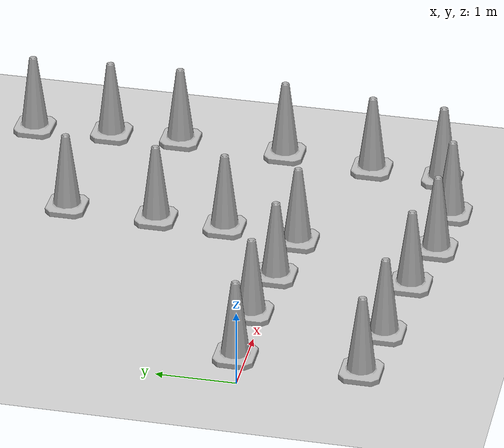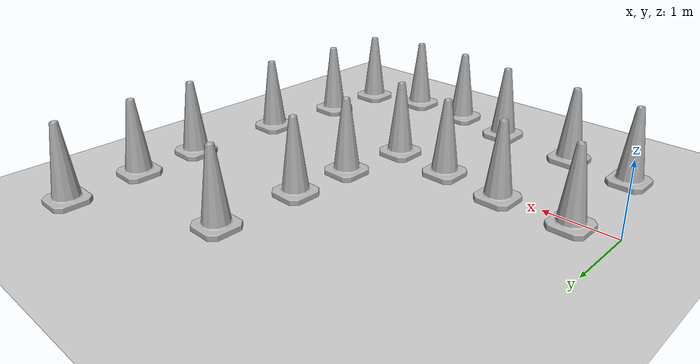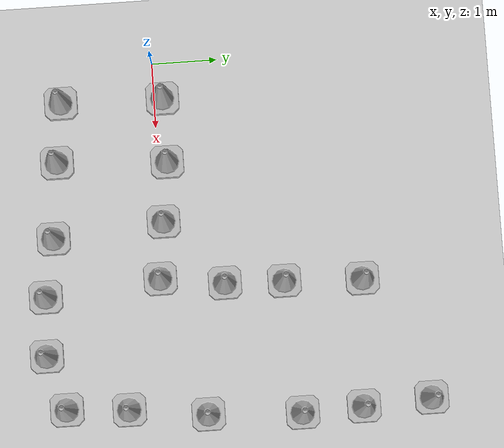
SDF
<sdf version="1.7">
 <world name="default">
  <light name="sun" type="directional">
   <pose>0 0 10 0 -0 0</pose>
   <diffuse>0.8 0.8 0.8 1</diffuse>
   <specular>0.2 0.2 0.2 1</specular>
   <attenuation>
    <range>1000</range>
    <constant>0.9</constant>
    <linear>0.01</linear>
    <quadratic>0.001</quadratic>
   </attenuation>
   <direction>-0.5 0.1 -0.9</direction>
   <spot><inner_angle>0</inner_angle><outer_angle>0</outer_angle><falloff>0</falloff></spot>
  </light>
  <model name="ground_plane">
   <static>1</static>
   <link name="link">
    <collision name="collision">
     <geometry><plane><normal>0 0 1</normal><size>100 100</size></plane></geometry>
     <surface>
      <contact><collide_bitmask>65535</collide_bitmask></contact>
      <friction><ode><mu>100</mu><mu2>50</mu2></ode></friction>
     </surface>
    </collision>
    <visual name="visual">
     <cast_shadows>0</cast_shadows>
     <geometry><plane><normal>0 0 1</normal><size>100 100</size></plane></geometry>
     <material>
      <script><uri>file://media/materials/scripts/gazebo.material</uri><name>Gazebo/Grey</name></script>
     </material>
    </visual>
   </link>
  </model>
  <gravity>0 0 -9.8</gravity>
  <magnetic_field>6e-06 2.3e-05 -4.2e-05</magnetic_field>
  <atmosphere type="adiabatic"/>
  <physics type="ode">
   <max_step_size>0.001</max_step_size>
   <real_time_factor>1</real_time_factor>
   <real_time_update_rate>1000</real_time_update_rate>
  </physics>
  <scene><ambient>0.4 0.4 0.4 1</ambient><background>0.7 0.7 0.7 1</background><shadows>1</shadows></scene>
  <audio><device>default</device></audio>
  <spherical_coordinates>
   <surface_model>EARTH_WGS84</surface_model>
   <latitude_deg>0</latitude_deg>
   <longitude_deg>0</longitude_deg>
   <elevation>0</elevation>
   <heading_deg>0</heading_deg>
  </spherical_coordinates>
  <model name="Construction Cone">
   <link name="link">
    <collision name="collision">
     <geometry>
      <mesh><scale>10 10 10</scale><uri>model://construction_cone/meshes/construction_cone.dae</uri></mesh>
     </geometry>
    </collision>
    <visual name="visual">
     <geometry>
      <mesh><scale>10 10 10</scale><uri>model://construction_cone/meshes/construction_cone.dae</uri></mesh>
     </geometry>
    </visual>
    <inertial>
     <inertia><ixx>1</ixx><ixy>0</ixy><ixz>0</ixz><iyy>1</iyy><iyz>0</iyz><izz>1</izz></inertia>
     <mass>1</mass>
    </inertial>
   </link>
   <pose>0.555092 0.130981 -1e-05 0 -0 0</pose>
  </model>
  <model name="Construction Cone_0">
   <link name="link">
    <collision name="collision">
     <geometry>
      <mesh><scale>10 10 10</scale><uri>model://construction_cone/meshes/construction_cone.dae</uri></mesh>
     </geometry>
    </collision>
    <visual name="visual">
     <geometry>
      <mesh><scale>10 10 10</scale><uri>model://construction_cone/meshes/construction_cone.dae</uri></mesh>
     </geometry>
    </visual>
    <inertial>
     <inertia><ixx>1</ixx><ixy>0</ixy><ixz>0</ixz><iyy>1</iyy><iyz>0</iyz><izz>1</izz></inertia>
     <mass>1</mass>
    </inertial>
   </link>
   <pose>3.33662 -0.076818 -0 0 -1e-06 0</pose>
  </model>
  <model name="Construction Cone_1">
   <link name="link">
    <collision name="collision">
     <geometry>
      <mesh><scale>10 10 10</scale><uri>model://construction_cone/meshes/construction_cone.dae</uri></mesh>
     </geometry>
    </collision>
    <visual name="visual">
     <geometry>
      <mesh><scale>10 10 10</scale><uri>model://construction_cone/meshes/construction_cone.dae</uri></mesh>
     </geometry>
    </visual>
    <inertial>
     <inertia><ixx>1</ixx><ixy>0</ixy><ixz>0</ixz><iyy>1</iyy><iyz>0</iyz><izz>1</izz></inertia>
     <mass>1</mass>
    </inertial>
   </link>
   <pose>1.54657 0.141657 -0 0 -0 0</pose>
  </model>
  <model name="Construction Cone_2">
   <link name="link">
    <collision name="collision">
     <geometry>
      <mesh><scale>10 10 10</scale><uri>model://construction_cone/meshes/construction_cone.dae</uri></mesh>
     </geometry>
    </collision>
    <visual name="visual">
     <geometry>
      <mesh><scale>10 10 10</scale><uri>model://construction_cone/meshes/construction_cone.dae</uri></mesh>
     </geometry>
    </visual>
    <inertial>
     <inertia><ixx>1</ixx><ixy>0</ixy><ixz>0</ixz><iyy>1</iyy><iyz>0</iyz><izz>1</izz></inertia>
     <mass>1</mass>
    </inertial>
   </link>
   <pose>2.46287 0.027508 -0 0 -0 0</pose>
  </model>
  <model name="Construction Cone_clone">
   <link name="link">
    <collision name="collision">
     <geometry>
      <mesh><scale>10 10 10</scale><uri>model://construction_cone/meshes/construction_cone.dae</uri></mesh>
     </geometry>
    </collision>
    <visual name="visual">
     <geometry>
      <mesh><scale>10 10 10</scale><uri>model://construction_cone/meshes/construction_cone.dae</uri></mesh>
     </geometry>
    </visual>
    <inertial>
     <inertia><ixx>1</ixx><ixy>0</ixy><ixz>0</ixz><iyy>1</iyy><iyz>0</iyz><izz>1</izz></inertia>
     <mass>1</mass>
    </inertial>
   </link>
   <pose>0.530167 -1.43512 -0 0 -0 0</pose>
  </model>
  <model name="Construction Cone_clone_0">
   <link name="link">
    <collision name="collision">
     <geometry>
      <mesh><scale>10 10 10</scale><uri>model://construction_cone/meshes/construction_cone.dae</uri></mesh>
     </geometry>
    </collision>
    <visual name="visual">
     <geometry>
      <mesh><scale>10 10 10</scale><uri>model://construction_cone/meshes/construction_cone.dae</uri></mesh>
     </geometry>
    </visual>
    <inertial>
     <inertia><ixx>1</ixx><ixy>0</ixy><ixz>0</ixz><iyy>1</iyy><iyz>0</iyz><izz>1</izz></inertia>
     <mass>1</mass>
    </inertial>
   </link>
   <pose>1.44845 -1.54705 -0 -0 -0 -0</pose>
  </model>
  <model name="Construction Cone_clone_1">
   <link name="link">
    <collision name="collision">
     <geometry>
      <mesh><scale>10 10 10</scale><uri>model://construction_cone/meshes/construction_cone.dae</uri></mesh>
     </geometry>
    </collision>
    <visual name="visual">
     <geometry>
      <mesh><scale>10 10 10</scale><uri>model://construction_cone/meshes/construction_cone.dae</uri></mesh>
     </geometry>
    </visual>
    <inertial>
     <inertia><ixx>1</ixx><ixy>0</ixy><ixz>0</ixz><iyy>1</iyy><iyz>0</iyz><izz>1</izz></inertia>
     <mass>1</mass>
    </inertial>
   </link>
   <pose>2.61532 -1.66783 -1e-05 -0 -0 -0</pose>
  </model>
  <model name="Construction Cone_clone_2">
   <link name="link">
    <collision name="collision">
     <geometry>
      <mesh><scale>10 10 10</scale><uri>model://construction_cone/meshes/construction_cone.dae</uri></mesh>
     </geometry>
    </collision>
    <visual name="visual">
     <geometry>
      <mesh><scale>10 10 10</scale><uri>model://construction_cone/meshes/construction_cone.dae</uri></mesh>
     </geometry>
    </visual>
    <inertial>
     <inertia><ixx>1</ixx><ixy>0</ixy><ixz>0</ixz><iyy>1</iyy><iyz>0</iyz><izz>1</izz></inertia>
     <mass>1</mass>
    </inertial>
   </link>
   <pose>3.50309 -1.83775 -0 0 -0 0</pose>
  </model>
  <model name="Construction Cone_clone_3">
   <link name="link">
    <collision name="collision">
     <geometry>
      <mesh><scale>10 10 10</scale><uri>model://construction_cone/meshes/construction_cone.dae</uri></mesh>
     </geometry>
    </collision>
    <visual name="visual">
     <geometry>
      <mesh><scale>10 10 10</scale><uri>model://construction_cone/meshes/construction_cone.dae</uri></mesh>
     </geometry>
    </visual>
    <inertial>
     <inertia><ixx>1</ixx><ixy>0</ixy><ixz>0</ixz><iyy>1</iyy><iyz>0</iyz><izz>1</izz></inertia>
     <mass>1</mass>
    </inertial>
   </link>
   <pose>4.40505 -1.87271 0 -0 -0 -0</pose>
  </model>
  <model name="Construction Cone_clone_4">
   <link name="link">
    <collision name="collision">
     <geometry>
      <mesh><scale>10 10 10</scale><uri>model://construction_cone/meshes/construction_cone.dae</uri></mesh>
     </geometry>
    </collision>
    <visual name="visual">
     <geometry>
      <mesh><scale>10 10 10</scale><uri>model://construction_cone/meshes/construction_cone.dae</uri></mesh>
     </geometry>
    </visual>
    <inertial>
     <inertia><ixx>1</ixx><ixy>0</ixy><ixz>0</ixz><iyy>1</iyy><iyz>0</iyz><izz>1</izz></inertia>
     <mass>1</mass>
    </inertial>
   </link>
   <pose>5.29765 -0.66979 -0 0 -1e-06 0</pose>
  </model>
  <model name="Construction Cone_clone_5">
   <link name="link">
    <collision name="collision">
     <geometry>
      <mesh><scale>10 10 10</scale><uri>model://construction_cone/meshes/construction_cone.dae</uri></mesh>
     </geometry>
    </collision>
    <visual name="visual">
     <geometry>
      <mesh><scale>10 10 10</scale><uri>model://construction_cone/meshes/construction_cone.dae</uri></mesh>
     </geometry>
    </visual>
    <inertial>
     <inertia><ixx>1</ixx><ixy>0</ixy><ixz>0</ixz><iyy>1</iyy><iyz>0</iyz><izz>1</izz></inertia>
     <mass>1</mass>
    </inertial>
   </link>
   <pose>5.23631 -1.61552 -0 0 -0 0</pose>
  </model>
  <model name="Construction Cone_clone_6">
   <link name="link">
    <collision name="collision">
     <geometry>
      <mesh><scale>10 10 10</scale><uri>model://construction_cone/meshes/construction_cone.dae</uri></mesh>
     </geometry>
    </collision>
    <visual name="visual">
     <geometry>
      <mesh><scale>10 10 10</scale><uri>model://construction_cone/meshes/construction_cone.dae</uri></mesh>
     </geometry>
    </visual>
    <inertial>
     <inertia><ixx>1</ixx><ixy>0</ixy><ixz>0</ixz><iyy>1</iyy><iyz>0</iyz><izz>1</izz></inertia>
     <mass>1</mass>
    </inertial>
   </link>
   <pose>5.44343 0.521556 -0 0 -0 0</pose>
  </model>
  <model name="Construction Cone_clone_7">
   <link name="link">
    <collision name="collision">
     <geometry>
      <mesh><scale>10 10 10</scale><uri>model://construction_cone/meshes/construction_cone.dae</uri></mesh>
     </geometry>
    </collision>
    <visual name="visual">
     <geometry>
      <mesh><scale>10 10 10</scale><uri>model://construction_cone/meshes/construction_cone.dae</uri></mesh>
     </geometry>
    </visual>
    <inertial>
     <inertia><ixx>1</ixx><ixy>0</ixy><ixz>0</ixz><iyy>1</iyy><iyz>0</iyz><izz>1</izz></inertia>
     <mass>1</mass>
    </inertial>
   </link>
   <pose>5.5121 1.94804 0 -0 -0 -0</pose>
  </model>
  <model name="Construction Cone_clone_8">
   <link name="link">
    <collision name="collision">
     <geometry>
      <mesh><scale>10 10 10</scale><uri>model://construction_cone/meshes/construction_cone.dae</uri></mesh>
     </geometry>
    </collision>
    <visual name="visual">
     <geometry>
      <mesh><scale>10 10 10</scale><uri>model://construction_cone/meshes/construction_cone.dae</uri></mesh>
     </geometry>
    </visual>
    <inertial>
     <inertia><ixx>1</ixx><ixy>0</ixy><ixz>0</ixz><iyy>1</iyy><iyz>0</iyz><izz>1</izz></inertia>
     <mass>1</mass>
    </inertial>
   </link>
   <pose>5.47843 2.8813 -9e-06 -2e-06 -0 -0</pose>
  </model>
  <model name="Construction Cone_clone_9">
   <link name="link">
    <collision name="collision">
     <geometry>
      <mesh><scale>10 10 10</scale><uri>model://construction_cone/meshes/construction_cone.dae</uri></mesh>
     </geometry>
    </collision>
    <visual name="visual">
     <geometry>
      <mesh><scale>10 10 10</scale><uri>model://construction_cone/meshes/construction_cone.dae</uri></mesh>
     </geometry>
    </visual>
    <inertial>
     <inertia><ixx>1</ixx><ixy>0</ixy><ixz>0</ixz><iyy>1</iyy><iyz>0</iyz><izz>1</izz></inertia>
     <mass>1</mass>
    </inertial>
   </link>
   <pose>3.46623 0.902041 -0 0 -1e-06 0</pose>
  </model>
  <model name="Construction Cone_clone_10">
   <link name="link">
    <collision name="collision">
     <geometry>
      <mesh><scale>10 10 10</scale><uri>model://construction_cone/meshes/construction_cone.dae</uri></mesh>
     </geometry>
    </collision>
    <visual name="visual">
     <geometry>
      <mesh><scale>10 10 10</scale><uri>model://construction_cone/meshes/construction_cone.dae</uri></mesh>
     </geometry>
    </visual>
    <inertial>
     <inertia><ixx>1</ixx><ixy>0</ixy><ixz>0</ixz><iyy>1</iyy><iyz>0</iyz><izz>1</izz></inertia>
     <mass>1</mass>
    </inertial>
   </link>
   <pose>3.49427 1.80962 -0 0 -1e-06 0</pose>
  </model>
  <model name="Construction Cone_clone_11">
   <link name="link">
    <collision name="collision">
     <geometry>
      <mesh><scale>10 10 10</scale><uri>model://construction_cone/meshes/construction_cone.dae</uri></mesh>
     </geometry>
    </collision>
    <visual name="visual">
     <geometry>
      <mesh><scale>10 10 10</scale><uri>model://construction_cone/meshes/construction_cone.dae</uri></mesh>
     </geometry>
    </visual>
    <inertial>
     <inertia><ixx>1</ixx><ixy>0</ixy><ixz>0</ixz><iyy>1</iyy><iyz>0</iyz><izz>1</izz></inertia>
     <mass>1</mass>
    </inertial>
   </link>
   <pose>3.53687 3 -0 0 -0 0</pose>
  </model>
  <model name="Construction Cone_clone_12">
   <link name="link">
    <collision name="collision">
     <geometry>
      <mesh><scale>10 10 10</scale><uri>model://construction_cone/meshes/construction_cone.dae</uri></mesh>
     </geometry>
    </collision>
    <visual name="visual">
     <geometry>
      <mesh><scale>10 10 10</scale><uri>model://construction_cone/meshes/construction_cone.dae</uri></mesh>
     </geometry>
    </visual>
    <inertial>
     <inertia><ixx>1</ixx><ixy>0</ixy><ixz>0</ixz><iyy>1</iyy><iyz>0</iyz><izz>1</izz></inertia>
     <mass>1</mass>
    </inertial>
   </link>
   <pose>5.41589 3.91757 -0 0 -0 0</pose>
  </model>
 </world>
</sdf>
